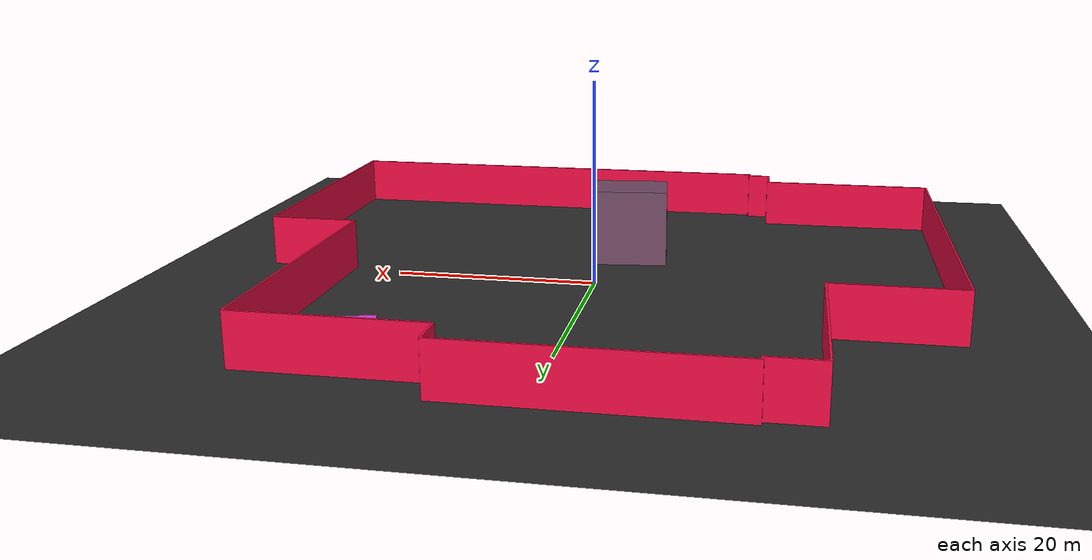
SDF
<?xml version="1.0" ?>
<sdf version="1.6">
  <world name="default">
    <atmosphere type="adiabatic"/>
    <wind>
      <linear_velocity>0 0 0</linear_velocity>
    </wind>
    <physics name="default_physics" default="1" type="ode">
      <max_step_size>0.001</max_step_size>
      <real_time_factor>1.0</real_time_factor>
      <real_time_update_rate>1000.0</real_time_update_rate>
      <max_contacts>20</max_contacts>
      <ode>
        <solver>
          <min_step_size>0.0001</min_step_size>
          <iters>50</iters>
          <sor>1.3</sor>
          <type>quick</type>
          <precon_iters>0</precon_iters>
          <use_dynamic_moi_rescaling>0</use_dynamic_moi_rescaling>
          <friction_model>pyramid_model</friction_model>
        </solver>
        <constraints>
          <cfm>0.0</cfm>
          <erp>0.2</erp>
          <contact_surface_layer>0.001</contact_surface_layer>
          <contact_max_correcting_vel>100.0</contact_max_correcting_vel>
        </constraints>
      </ode>
    </physics>
    <gravity>0 0 -9.8</gravity>
    <model name="ground_plane">
      <pose frame="">0 0 0 0 -0 0</pose>
      <static>1</static>
      <self_collide>0</self_collide>
      <allow_auto_disable>1</allow_auto_disable>
      <link name="link">
        <kinematic>0</kinematic>
        <gravity>1</gravity>
        <self_collide>0</self_collide>
        <collision name="collision">
          <geometry>
            <plane>
              <size>100 100</size>
              <normal>0 0 1</normal>
            </plane>
          </geometry>
          <pose frame="">0 0 0 0 -0 0</pose>
          <max_contacts>20</max_contacts>
          <surface>
            <friction>
              <ode>
                <mu>100.0</mu>
                <mu2>50.0</mu2>
                <fdir1>0 0 0</fdir1>
                <slip1>0.0</slip1>
                <slip2>0.0</slip2>
              </ode>
            </friction>
            <contact>
              <collide_bitmask>65535</collide_bitmask>
            </contact>
          </surface>
        </collision>
        <visual name="visual">
          <geometry>
            <plane>
              <size>100 100</size>
              <normal>0 0 1</normal>
            </plane>
          </geometry>
          <material>
            <ambient>0.175 0.175 0.175 1</ambient>
            <diffuse>0.175 0.175 0.175 1.0</diffuse>
          </material>
          <pose frame="">0 0 0 0 -0 0</pose>
          <cast_shadows>0</cast_shadows>
          <transparency>0.0</transparency>
        </visual>
        <pose frame="">0 0 0 0 -0 0</pose>
      </link>
    </model>
    <model name="box">
      <pose frame="">-2.28284 -9.53076 3.87823 0 -0 0.103896</pose>
      <static>1</static>
      <self_collide>0</self_collide>
      <allow_auto_disable>0</allow_auto_disable>
      <link name="link">
        <kinematic>0</kinematic>
        <gravity>1</gravity>
        <self_collide>0</self_collide>
        <collision name="collision">
          <geometry>
            <box>
              <size>7.46413 5.46235 7.75645</size>
            </box>
          </geometry>
          <pose frame="">0 0 0 0 -0 0</pose>
          <max_contacts>20</max_contacts>
        </collision>
        <visual name="visual">
          <geometry>
            <box>
              <size>7.46413 5.46235 7.75645</size>
            </box>
          </geometry>
          <material>
            <ambient>0.45098 0.290196 0.396078 1</ambient>
            <diffuse>0.45098039215686275 0.2901960784313726 0.396078431372549 1</diffuse>
          </material>
          <pose frame="">0 0 0 0 -0 0</pose>
          <cast_shadows>1</cast_shadows>
          <transparency>0.0</transparency>
        </visual>
        <pose frame="">0 0 0 0 -0 0</pose>
      </link>
    </model>
    <model name="box_1">
      <pose frame="">18.9505 19.1251 0.331822 0 0 -2.88294</pose>
      <static>1</static>
      <self_collide>0</self_collide>
      <allow_auto_disable>0</allow_auto_disable>
      <link name="link">
        <kinematic>0</kinematic>
        <gravity>1</gravity>
        <self_collide>0</self_collide>
        <collision name="collision">
          <geometry>
            <box>
              <size>5.90115 8.36749 0.663645</size>
            </box>
          </geometry>
          <pose frame="">0 0 0 0 -0 0</pose>
          <max_contacts>20</max_contacts>
        </collision>
        <visual name="visual">
          <geometry>
            <box>
              <size>5.90115 8.36749 0.663645</size>
            </box>
          </geometry>
          <material>
            <ambient>0.878431 0.247059 0.847059 1</ambient>
            <diffuse>0.8784313725490196 0.24705882352941178 0.8470588235294118 1</diffuse>
          </material>
          <pose frame="">0 0 0 0 -0 0</pose>
          <cast_shadows>1</cast_shadows>
          <transparency>0.0</transparency>
        </visual>
        <pose frame="">0 0 0 0 -0 0</pose>
      </link>
    </model>
    <include>
      <uri>model://test_3_walls</uri>
      <pose frame="">0 0 2.5 0 -0 0</pose>
      <name>test_3_walls</name>
      <static>1</static>
    </include>
    <include>
      <uri>model://ground_plane</uri>
    </include>
    <include>
      <uri>model://sun</uri>
    </include>
  </world>
</sdf>

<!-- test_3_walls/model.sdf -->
<sdf version="1.6">
  <model name="test_3_walls">
    <pose frame="">0 0 2.5 0 -0 0</pose>
    <static>1</static>
    <self_collide>0</self_collide>
    <allow_auto_disable>0</allow_auto_disable>
    <link name="mesh">
      <kinematic>0</kinematic>
      <gravity>1</gravity>
      <self_collide>0</self_collide>
      <collision name="collision">
        <geometry>
          <mesh>
            <uri>file:///home/agusmazzeo/Documents/UTN/Proyecto/Frontier-Exploration-with-a-prior/Notebooks/files/models/test_3_walls/meshes/nEpsSeziPR.stl</uri>
            <scale>1 1 1</scale>
          </mesh>
        </geometry>
        <pose frame="">-7.35734 -13.3729 -2.5 0 -0 0</pose>
        <max_contacts>20</max_contacts>
      </collision>
      <visual name="visual">
        <geometry>
          <mesh>
            <uri>file:///home/agusmazzeo/Documents/UTN/Proyecto/Frontier-Exploration-with-a-prior/Notebooks/files/models/test_3_walls/meshes/hkvEqMDRQe.stl</uri>
            <scale>1 1 1</scale>
          </mesh>
        </geometry>
        <material>
          <ambient>0.945098 0.0470588 0.270588 1</ambient>
          <diffuse>0.9450980392156862 0.047058823529411764 0.27058823529411763 1</diffuse>
        </material>
        <pose frame="">-7.35734 -13.3729 -2.5 0 -0 0</pose>
        <cast_shadows>1</cast_shadows>
        <transparency>0.0</transparency>
      </visual>
      <pose frame="">0 0 0 0 -0 0</pose>
    </link>
  </model>
</sdf>
